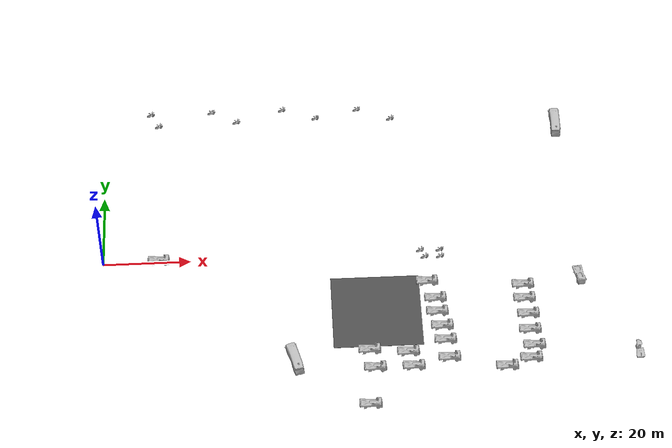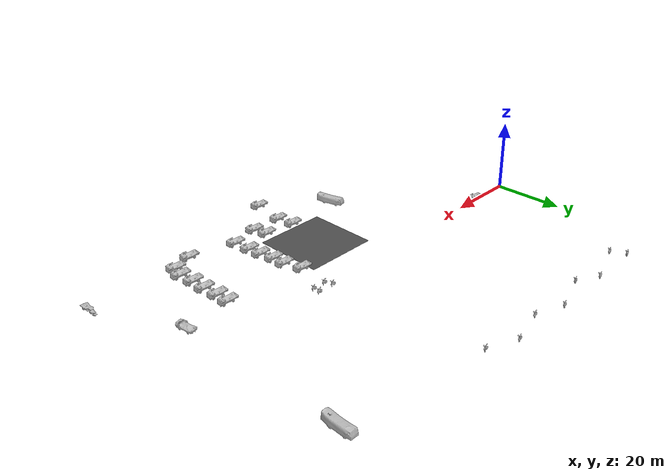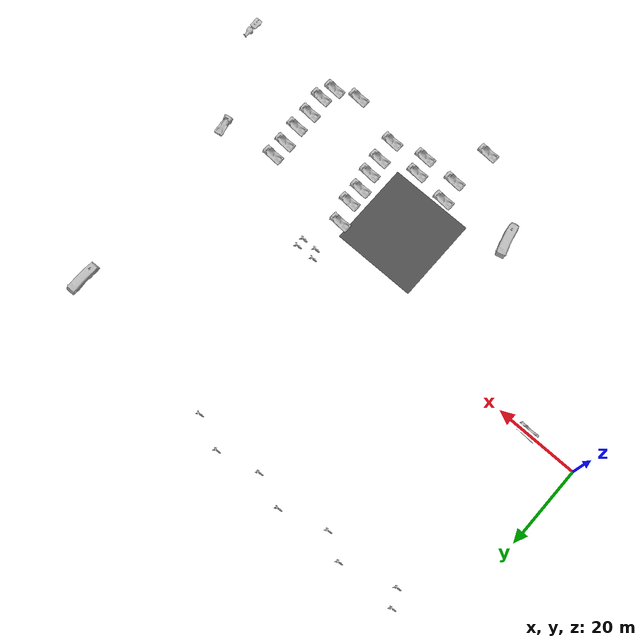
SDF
<sdf version="1.7">
 <world name="smoll_world">
  <model name="ground_plane">
   <static>1</static>
   <link name="link">
    <collision name="collision">
     <geometry><plane><normal>0 0 1</normal><size>100 100</size></plane></geometry>
     <surface><friction><ode><mu>100</mu><mu2>50</mu2></ode></friction></surface>
    </collision>
   </link>
  </model>
  <model name="asphalt_plane_74">
   <static>1</static>
   <pose>61.581 -16.664 0 0 -0 0</pose>
   <link name="link">
    <visual name="visual">
     <geometry><box><size>20 20 0.05</size></box></geometry>
     <material>
      <script>
       <uri>model://asphalt_plane/materials/scripts</uri>
       <uri>model://asphalt_plane/materials/textures</uri>
       <name>vrc/asphalt</name>
      </script>
     </material>
    </visual>
   </link>
  </model>
  <model name="kare-bus-2_clone_3">
   <model name="kare-bus">
    <static>1</static>
    <link name="link">
     <collision name="collision">
      <geometry><mesh><scale>8 8 8</scale><uri>model://kare-bus/meshes/kare-bus.obj</uri></mesh></geometry>
     </collision>
     <visual name="visual">
      <geometry><mesh><scale>8 8 8</scale><uri>model://kare-bus/meshes/kare-bus.obj</uri></mesh></geometry>
     </visual>
    </link>
    <pose>-3.3e-05 -0 -5e-06 1.57109 0.060055 1.57564</pose>
   </model>
   <static>0</static>
   <pose>107.138 37.8184 2.05341 0 -0 1.5594</pose>
  </model>
  <model name="bus56">
   <model name="kare-bus4">
    <model name="kare-bus-2">
     <model name="kare-bus">
      <static>1</static>
      <link name="link">
       <collision name="collision">
        <geometry>
         <mesh><scale>8 8 8</scale><uri>/home/amadeus/model_editor_models/kare-bus/meshes/kare-bus.obj</uri></mesh>
        </geometry>
       </collision>
       <visual name="visual">
        <geometry>
         <mesh><scale>8 8 8</scale><uri>/home/amadeus/model_editor_models/kare-bus/meshes/kare-bus.obj</uri></mesh>
        </geometry>
       </visual>
      </link>
      <pose>-3.3e-05 -0 -5e-06 1.57109 0.060055 1.57564</pose>
     </model>
     <static>0</static>
     <pose>4.1e-05 -4.9e-05 -0 0 -0 1.83082</pose>
    </model>
    <static>0</static>
    <pose>-4.2e-05 -5e-05 1.18266 0 -0 0</pose>
   </model>
   <static>0</static>
   <plugin name="model_move" filename="/home/amadeus/Downloads/dev_ws/src/articubot_one/worlds/build/libmodel_move.so"/>
   <pose>42.9302 -30.0519 5e-06 0 -0 5e-06</pose>
  </model>
  <model name="kare-lorry3">
   <model name="kare-lorry2">
    <model name="kare-emptylorry">
     <static>1</static>
     <link name="link">
      <collision name="collision">
       <geometry>
        <mesh>
         <scale>5 5 5</scale>
         <uri>/home/amadeus/model_editor_models/kare-emptylorry/meshes/kare-emptylorry.obj</uri>
        </mesh>
       </geometry>
      </collision>
      <visual name="visual">
       <geometry>
        <mesh>
         <scale>5 5 5</scale>
         <uri>/home/amadeus/model_editor_models/kare-emptylorry/meshes/kare-emptylorry.obj</uri>
        </mesh>
       </geometry>
      </visual>
     </link>
     <pose>-2.6e-05 -2.7e-05 -2e-06 1.55178 -0.050932 -1.58567</pose>
    </model>
    <static>0</static>
    <pose>2e-06 0 0.971266 0 -0 0</pose>
   </model>
   <static>1</static>
   <allow_auto_disable>0</allow_auto_disable>
   <plugin name="model_move" filename="/home/amadeus/Downloads/dev_ws/src/articubot_one/worlds/build/libmodel_move.so"/>
   <pose>12.7456 0.029316 0 0 0 0</pose>
  </model>
  <model name="kare-lorry3_clone_1">
   <model name="kare-lorry2">
    <model name="kare-emptylorry">
     <static>1</static>
     <link name="link">
      <collision name="collision">
       <geometry>
        <mesh>
         <scale>5 5 5</scale>
         <uri>/home/amadeus/model_editor_models/kare-emptylorry/meshes/kare-emptylorry.obj</uri>
        </mesh>
       </geometry>
      </collision>
      <visual name="visual">
       <geometry>
        <mesh>
         <scale>5 5 5</scale>
         <uri>/home/amadeus/model_editor_models/kare-emptylorry/meshes/kare-emptylorry.obj</uri>
        </mesh>
       </geometry>
      </visual>
     </link>
     <pose>-2.6e-05 -2.7e-05 -2e-06 1.55178 -0.050932 -1.58567</pose>
    </model>
    <static>0</static>
    <pose>2e-06 0 0.971266 0 -0 0</pose>
   </model>
   <static>1</static>
   <allow_auto_disable>0</allow_auto_disable>
   <plugin name="model_move" filename="/home/amadeus/Downloads/dev_ws/src/articubot_one/worlds/build/libmodel_move.so"/>
   <pose>59 -43 0 0 0 0</pose>
  </model>
  <model name="kare-lorry3_clone_2">
   <model name="kare-lorry2">
    <model name="kare-emptylorry">
     <static>1</static>
     <link name="link">
      <collision name="collision">
       <geometry>
        <mesh>
         <scale>5 5 5</scale>
         <uri>/home/amadeus/model_editor_models/kare-emptylorry/meshes/kare-emptylorry.obj</uri>
        </mesh>
       </geometry>
      </collision>
      <visual name="visual">
       <geometry>
        <mesh>
         <scale>5 5 5</scale>
         <uri>/home/amadeus/model_editor_models/kare-emptylorry/meshes/kare-emptylorry.obj</uri>
        </mesh>
       </geometry>
      </visual>
     </link>
     <pose>-2.6e-05 -2.7e-05 -2e-06 1.55178 -0.050932 -1.58567</pose>
    </model>
    <static>0</static>
    <pose>2e-06 0 0.971266 0 -0 0</pose>
   </model>
   <static>1</static>
   <allow_auto_disable>0</allow_auto_disable>
   <plugin name="model_move" filename="/home/amadeus/Downloads/dev_ws/src/articubot_one/worlds/build/libmodel_move.so"/>
   <pose>108 -9 -0 0 -0 -1.39707</pose>
  </model>
  <model name="kare-lorry3_clone_3">
   <model name="kare-lorry2">
    <model name="kare-emptylorry">
     <static>1</static>
     <link name="link">
      <collision name="collision">
       <geometry>
        <mesh>
         <scale>5 5 5</scale>
         <uri>/home/amadeus/model_editor_models/kare-emptylorry/meshes/kare-emptylorry.obj</uri>
        </mesh>
       </geometry>
      </collision>
      <visual name="visual">
       <geometry>
        <mesh>
         <scale>5 5 5</scale>
         <uri>/home/amadeus/model_editor_models/kare-emptylorry/meshes/kare-emptylorry.obj</uri>
        </mesh>
       </geometry>
      </visual>
     </link>
     <pose>-2.6e-05 -2.7e-05 -2e-06 1.55178 -0.050932 -1.58567</pose>
    </model>
    <static>0</static>
    <pose>2e-06 0 0.971266 0 -0 0</pose>
   </model>
   <static>1</static>
   <allow_auto_disable>0</allow_auto_disable>
   <plugin name="model_move" filename="/home/amadeus/Downloads/dev_ws/src/articubot_one/worlds/build/libmodel_move.so"/>
   <pose>73.4196 -9 0 0 0 0</pose>
  </model>
  <model name="kare-lorry3_clone_4">
   <model name="kare-lorry2">
    <model name="kare-emptylorry">
     <static>1</static>
     <link name="link">
      <collision name="collision">
       <geometry>
        <mesh>
         <scale>5 5 5</scale>
         <uri>/home/amadeus/model_editor_models/kare-emptylorry/meshes/kare-emptylorry.obj</uri>
        </mesh>
       </geometry>
      </collision>
      <visual name="visual">
       <geometry>
        <mesh>
         <scale>5 5 5</scale>
         <uri>/home/amadeus/model_editor_models/kare-emptylorry/meshes/kare-emptylorry.obj</uri>
        </mesh>
       </geometry>
      </visual>
     </link>
     <pose>-2.6e-05 -2.7e-05 -2e-06 1.55178 -0.050932 -1.58567</pose>
    </model>
    <static>0</static>
    <pose>2e-06 0 0.971266 0 -0 0</pose>
   </model>
   <static>1</static>
   <allow_auto_disable>0</allow_auto_disable>
   <plugin name="model_move" filename="/home/amadeus/Downloads/dev_ws/src/articubot_one/worlds/build/libmodel_move.so"/>
   <pose>75 -14 0 0 0 0</pose>
  </model>
  <model name="kare-lorry3_clone_3_clone">
   <model name="kare-lorry2">
    <model name="kare-emptylorry">
     <static>1</static>
     <link name="link">
      <collision name="collision">
       <geometry>
        <mesh>
         <scale>5 5 5</scale>
         <uri>/home/amadeus/model_editor_models/kare-emptylorry/meshes/kare-emptylorry.obj</uri>
        </mesh>
       </geometry>
      </collision>
      <visual name="visual">
       <geometry>
        <mesh>
         <scale>5 5 5</scale>
         <uri>/home/amadeus/model_editor_models/kare-emptylorry/meshes/kare-emptylorry.obj</uri>
        </mesh>
       </geometry>
      </visual>
     </link>
     <pose>-2.6e-05 -2.7e-05 -2e-06 1.55178 -0.050932 -1.58567</pose>
    </model>
    <static>0</static>
    <pose>2e-06 0 0.971266 0 -0 0</pose>
   </model>
   <static>1</static>
   <allow_auto_disable>0</allow_auto_disable>
   <plugin name="model_move" filename="/home/amadeus/Downloads/dev_ws/src/articubot_one/worlds/build/libmodel_move.so"/>
   <pose>75.1445 -17.8999 0 0 0 0</pose>
  </model>
  <model name="kare-lorry3_clone_3_clone_0">
   <model name="kare-lorry2">
    <model name="kare-emptylorry">
     <static>1</static>
     <link name="link">
      <collision name="collision">
       <geometry>
        <mesh>
         <scale>5 5 5</scale>
         <uri>/home/amadeus/model_editor_models/kare-emptylorry/meshes/kare-emptylorry.obj</uri>
        </mesh>
       </geometry>
      </collision>
      <visual name="visual">
       <geometry>
        <mesh>
         <scale>5 5 5</scale>
         <uri>/home/amadeus/model_editor_models/kare-emptylorry/meshes/kare-emptylorry.obj</uri>
        </mesh>
       </geometry>
      </visual>
     </link>
     <pose>-2.6e-05 -2.7e-05 -2e-06 1.55178 -0.050932 -1.58567</pose>
    </model>
    <static>0</static>
    <pose>2e-06 0 0.971266 0 -0 0</pose>
   </model>
   <static>1</static>
   <allow_auto_disable>0</allow_auto_disable>
   <plugin name="model_move" filename="/home/amadeus/Downloads/dev_ws/src/articubot_one/worlds/build/libmodel_move.so"/>
   <pose>76 -22 0 0 0 0</pose>
  </model>
  <model name="kare-lorry3_clone_3_clone_1">
   <model name="kare-lorry2">
    <model name="kare-emptylorry">
     <static>1</static>
     <link name="link">
      <collision name="collision">
       <geometry>
        <mesh>
         <scale>5 5 5</scale>
         <uri>/home/amadeus/model_editor_models/kare-emptylorry/meshes/kare-emptylorry.obj</uri>
        </mesh>
       </geometry>
      </collision>
      <visual name="visual">
       <geometry>
        <mesh>
         <scale>5 5 5</scale>
         <uri>/home/amadeus/model_editor_models/kare-emptylorry/meshes/kare-emptylorry.obj</uri>
        </mesh>
       </geometry>
      </visual>
     </link>
     <pose>-2.6e-05 -2.7e-05 -2e-06 1.55178 -0.050932 -1.58567</pose>
    </model>
    <static>0</static>
    <pose>2e-06 0 0.971266 0 -0 0</pose>
   </model>
   <static>1</static>
   <allow_auto_disable>0</allow_auto_disable>
   <plugin name="model_move" filename="/home/amadeus/Downloads/dev_ws/src/articubot_one/worlds/build/libmodel_move.so"/>
   <pose>76.4405 -26 0 0 0 0</pose>
  </model>
  <model name="kare-lorry3_clone_3_clone_2">
   <model name="kare-lorry2">
    <model name="kare-emptylorry">
     <static>1</static>
     <link name="link">
      <collision name="collision">
       <geometry>
        <mesh>
         <scale>5 5 5</scale>
         <uri>/home/amadeus/model_editor_models/kare-emptylorry/meshes/kare-emptylorry.obj</uri>
        </mesh>
       </geometry>
      </collision>
      <visual name="visual">
       <geometry>
        <mesh>
         <scale>5 5 5</scale>
         <uri>/home/amadeus/model_editor_models/kare-emptylorry/meshes/kare-emptylorry.obj</uri>
        </mesh>
       </geometry>
      </visual>
     </link>
     <pose>-2.6e-05 -2.7e-05 -2e-06 1.55178 -0.050932 -1.58567</pose>
    </model>
    <static>0</static>
    <pose>2e-06 0 0.971266 0 -0 0</pose>
   </model>
   <static>1</static>
   <allow_auto_disable>0</allow_auto_disable>
   <plugin name="model_move" filename="/home/amadeus/Downloads/dev_ws/src/articubot_one/worlds/build/libmodel_move.so"/>
   <pose>77 -31 0 0 0 0</pose>
  </model>
  <model name="kare-lorry3_clone_3_clone_3">
   <model name="kare-lorry2">
    <model name="kare-emptylorry">
     <static>1</static>
     <link name="link">
      <collision name="collision">
       <geometry>
        <mesh>
         <scale>5 5 5</scale>
         <uri>/home/amadeus/model_editor_models/kare-emptylorry/meshes/kare-emptylorry.obj</uri>
        </mesh>
       </geometry>
      </collision>
      <visual name="visual">
       <geometry>
        <mesh>
         <scale>5 5 5</scale>
         <uri>/home/amadeus/model_editor_models/kare-emptylorry/meshes/kare-emptylorry.obj</uri>
        </mesh>
       </geometry>
      </visual>
     </link>
     <pose>-2.6e-05 -2.7e-05 -2e-06 1.55178 -0.050932 -1.58567</pose>
    </model>
    <static>0</static>
    <pose>2e-06 0 0.971266 0 -0 0</pose>
   </model>
   <static>1</static>
   <allow_auto_disable>0</allow_auto_disable>
   <plugin name="model_move" filename="/home/amadeus/Downloads/dev_ws/src/articubot_one/worlds/build/libmodel_move.so"/>
   <pose>68 -29 0 0 0 0</pose>
  </model>
  <model name="kare-lorry3_clone_3_clone_4">
   <model name="kare-lorry2">
    <model name="kare-emptylorry">
     <static>1</static>
     <link name="link">
      <collision name="collision">
       <geometry>
        <mesh>
         <scale>5 5 5</scale>
         <uri>/home/amadeus/model_editor_models/kare-emptylorry/meshes/kare-emptylorry.obj</uri>
        </mesh>
       </geometry>
      </collision>
      <visual name="visual">
       <geometry>
        <mesh>
         <scale>5 5 5</scale>
         <uri>/home/amadeus/model_editor_models/kare-emptylorry/meshes/kare-emptylorry.obj</uri>
        </mesh>
       </geometry>
      </visual>
     </link>
     <pose>-2.6e-05 -2.7e-05 -2e-06 1.55178 -0.050932 -1.58567</pose>
    </model>
    <static>0</static>
    <pose>2e-06 0 0.971266 0 -0 0</pose>
   </model>
   <static>1</static>
   <allow_auto_disable>0</allow_auto_disable>
   <plugin name="model_move" filename="/home/amadeus/Downloads/dev_ws/src/articubot_one/worlds/build/libmodel_move.so"/>
   <pose>69 -33 0 0 0 0</pose>
  </model>
  <model name="kare-lorry3_clone_3_clone_5">
   <model name="kare-lorry2">
    <model name="kare-emptylorry">
     <static>1</static>
     <link name="link">
      <collision name="collision">
       <geometry>
        <mesh>
         <scale>5 5 5</scale>
         <uri>/home/amadeus/model_editor_models/kare-emptylorry/meshes/kare-emptylorry.obj</uri>
        </mesh>
       </geometry>
      </collision>
      <visual name="visual">
       <geometry>
        <mesh>
         <scale>5 5 5</scale>
         <uri>/home/amadeus/model_editor_models/kare-emptylorry/meshes/kare-emptylorry.obj</uri>
        </mesh>
       </geometry>
      </visual>
     </link>
     <pose>-2.6e-05 -2.7e-05 -2e-06 1.55178 -0.050932 -1.58567</pose>
    </model>
    <static>0</static>
    <pose>2e-06 0 0.971266 0 -0 0</pose>
   </model>
   <static>1</static>
   <allow_auto_disable>0</allow_auto_disable>
   <plugin name="model_move" filename="/home/amadeus/Downloads/dev_ws/src/articubot_one/worlds/build/libmodel_move.so"/>
   <pose>59.4904 -28 0 0 0 0</pose>
  </model>
  <model name="kare-lorry3_clone_3_clone_6">
   <model name="kare-lorry2">
    <model name="kare-emptylorry">
     <static>1</static>
     <link name="link">
      <collision name="collision">
       <geometry>
        <mesh>
         <scale>5 5 5</scale>
         <uri>/home/amadeus/model_editor_models/kare-emptylorry/meshes/kare-emptylorry.obj</uri>
        </mesh>
       </geometry>
      </collision>
      <visual name="visual">
       <geometry>
        <mesh>
         <scale>5 5 5</scale>
         <uri>/home/amadeus/model_editor_models/kare-emptylorry/meshes/kare-emptylorry.obj</uri>
        </mesh>
       </geometry>
      </visual>
     </link>
     <pose>-2.6e-05 -2.7e-05 -2e-06 1.55178 -0.050932 -1.58567</pose>
    </model>
    <static>0</static>
    <pose>2e-06 0 0.971266 0 -0 0</pose>
   </model>
   <static>1</static>
   <allow_auto_disable>0</allow_auto_disable>
   <plugin name="model_move" filename="/home/amadeus/Downloads/dev_ws/src/articubot_one/worlds/build/libmodel_move.so"/>
   <pose>60.4817 -33 0 0 0 0</pose>
  </model>
  <model name="kare-lorry3_clone_3_clone_7">
   <model name="kare-lorry2">
    <model name="kare-emptylorry">
     <static>1</static>
     <link name="link">
      <collision name="collision">
       <geometry>
        <mesh>
         <scale>5 5 5</scale>
         <uri>/home/amadeus/model_editor_models/kare-emptylorry/meshes/kare-emptylorry.obj</uri>
        </mesh>
       </geometry>
      </collision>
      <visual name="visual">
       <geometry>
        <mesh>
         <scale>5 5 5</scale>
         <uri>/home/amadeus/model_editor_models/kare-emptylorry/meshes/kare-emptylorry.obj</uri>
        </mesh>
       </geometry>
      </visual>
     </link>
     <pose>-2.6e-05 -2.7e-05 -2e-06 1.55178 -0.050932 -1.58567</pose>
    </model>
    <static>0</static>
    <pose>2e-06 0 0.971266 0 -0 0</pose>
   </model>
   <static>1</static>
   <allow_auto_disable>0</allow_auto_disable>
   <plugin name="model_move" filename="/home/amadeus/Downloads/dev_ws/src/articubot_one/worlds/build/libmodel_move.so"/>
   <pose>89.5026 -34 0 0 0 0</pose>
  </model>
  <model name="kare-lorry3_clone_3_clone_8">
   <model name="kare-lorry2">
    <model name="kare-emptylorry">
     <static>1</static>
     <link name="link">
      <collision name="collision">
       <geometry>
        <mesh>
         <scale>5 5 5</scale>
         <uri>/home/amadeus/model_editor_models/kare-emptylorry/meshes/kare-emptylorry.obj</uri>
        </mesh>
       </geometry>
      </collision>
      <visual name="visual">
       <geometry>
        <mesh>
         <scale>5 5 5</scale>
         <uri>/home/amadeus/model_editor_models/kare-emptylorry/meshes/kare-emptylorry.obj</uri>
        </mesh>
       </geometry>
      </visual>
     </link>
     <pose>-2.6e-05 -2.7e-05 -2e-06 1.55178 -0.050932 -1.58567</pose>
    </model>
    <static>0</static>
    <pose>2e-06 0 0.971266 0 -0 0</pose>
   </model>
   <static>1</static>
   <allow_auto_disable>0</allow_auto_disable>
   <plugin name="model_move" filename="/home/amadeus/Downloads/dev_ws/src/articubot_one/worlds/build/libmodel_move.so"/>
   <pose>95 -32 0 0 0 0</pose>
  </model>
  <model name="kare-lorry3_clone_3_clone_9">
   <model name="kare-lorry2">
    <model name="kare-emptylorry">
     <static>1</static>
     <link name="link">
      <collision name="collision">
       <geometry>
        <mesh>
         <scale>5 5 5</scale>
         <uri>/home/amadeus/model_editor_models/kare-emptylorry/meshes/kare-emptylorry.obj</uri>
        </mesh>
       </geometry>
      </collision>
      <visual name="visual">
       <geometry>
        <mesh>
         <scale>5 5 5</scale>
         <uri>/home/amadeus/model_editor_models/kare-emptylorry/meshes/kare-emptylorry.obj</uri>
        </mesh>
       </geometry>
      </visual>
     </link>
     <pose>-2.6e-05 -2.7e-05 -2e-06 1.55178 -0.050932 -1.58567</pose>
    </model>
    <static>0</static>
    <pose>2e-06 0 0.971266 0 -0 0</pose>
   </model>
   <static>1</static>
   <allow_auto_disable>0</allow_auto_disable>
   <plugin name="model_move" filename="/home/amadeus/Downloads/dev_ws/src/articubot_one/worlds/build/libmodel_move.so"/>
   <pose>96 -28.4952 0 0 0 0</pose>
  </model>
  <model name="kare-lorry3_clone_3_clone_10">
   <model name="kare-lorry2">
    <model name="kare-emptylorry">
     <static>1</static>
     <link name="link">
      <collision name="collision">
       <geometry>
        <mesh>
         <scale>5 5 5</scale>
         <uri>/home/amadeus/model_editor_models/kare-emptylorry/meshes/kare-emptylorry.obj</uri>
        </mesh>
       </geometry>
      </collision>
      <visual name="visual">
       <geometry>
        <mesh>
         <scale>5 5 5</scale>
         <uri>/home/amadeus/model_editor_models/kare-emptylorry/meshes/kare-emptylorry.obj</uri>
        </mesh>
       </geometry>
      </visual>
     </link>
     <pose>-2.6e-05 -2.7e-05 -2e-06 1.55178 -0.050932 -1.58567</pose>
    </model>
    <static>0</static>
    <pose>2e-06 0 0.971266 0 -0 0</pose>
   </model>
   <static>1</static>
   <allow_auto_disable>0</allow_auto_disable>
   <plugin name="model_move" filename="/home/amadeus/Downloads/dev_ws/src/articubot_one/worlds/build/libmodel_move.so"/>
   <pose>95.4546 -24 0 0 0 0</pose>
  </model>
  <model name="kare-lorry3_clone_3_clone_11">
   <model name="kare-lorry2">
    <model name="kare-emptylorry">
     <static>1</static>
     <link name="link">
      <collision name="collision">
       <geometry>
        <mesh>
         <scale>5 5 5</scale>
         <uri>/home/amadeus/model_editor_models/kare-emptylorry/meshes/kare-emptylorry.obj</uri>
        </mesh>
       </geometry>
      </collision>
      <visual name="visual">
       <geometry>
        <mesh>
         <scale>5 5 5</scale>
         <uri>/home/amadeus/model_editor_models/kare-emptylorry/meshes/kare-emptylorry.obj</uri>
        </mesh>
       </geometry>
      </visual>
     </link>
     <pose>-2.6e-05 -2.7e-05 -2e-06 1.55178 -0.050932 -1.58567</pose>
    </model>
    <static>0</static>
    <pose>2e-06 0 0.971266 0 -0 0</pose>
   </model>
   <static>1</static>
   <allow_auto_disable>0</allow_auto_disable>
   <plugin name="model_move" filename="/home/amadeus/Downloads/dev_ws/src/articubot_one/worlds/build/libmodel_move.so"/>
   <pose>95.4777 -19.5399 0 0 0 0</pose>
  </model>
  <model name="kare-lorry3_clone_3_clone_12">
   <model name="kare-lorry2">
    <model name="kare-emptylorry">
     <static>1</static>
     <link name="link">
      <collision name="collision">
       <geometry>
        <mesh>
         <scale>5 5 5</scale>
         <uri>/home/amadeus/model_editor_models/kare-emptylorry/meshes/kare-emptylorry.obj</uri>
        </mesh>
       </geometry>
      </collision>
      <visual name="visual">
       <geometry>
        <mesh>
         <scale>5 5 5</scale>
         <uri>/home/amadeus/model_editor_models/kare-emptylorry/meshes/kare-emptylorry.obj</uri>
        </mesh>
       </geometry>
      </visual>
     </link>
     <pose>-2.6e-05 -2.7e-05 -2e-06 1.55178 -0.050932 -1.58567</pose>
    </model>
    <static>0</static>
    <pose>2e-06 0 0.971266 0 -0 0</pose>
   </model>
   <static>1</static>
   <allow_auto_disable>0</allow_auto_disable>
   <plugin name="model_move" filename="/home/amadeus/Downloads/dev_ws/src/articubot_one/worlds/build/libmodel_move.so"/>
   <pose>95 -15 0 0 0 0</pose>
  </model>
  <model name="kare-lorry3_clone_3_clone_13">
   <model name="kare-lorry2">
    <model name="kare-emptylorry">
     <static>1</static>
     <link name="link">
      <collision name="collision">
       <geometry>
        <mesh>
         <scale>5 5 5</scale>
         <uri>/home/amadeus/model_editor_models/kare-emptylorry/meshes/kare-emptylorry.obj</uri>
        </mesh>
       </geometry>
      </collision>
      <visual name="visual">
       <geometry>
        <mesh>
         <scale>5 5 5</scale>
         <uri>/home/amadeus/model_editor_models/kare-emptylorry/meshes/kare-emptylorry.obj</uri>
        </mesh>
       </geometry>
      </visual>
     </link>
     <pose>-2.6e-05 -2.7e-05 -2e-06 1.55178 -0.050932 -1.58567</pose>
    </model>
    <static>0</static>
    <pose>2e-06 0 0.971266 0 -0 0</pose>
   </model>
   <static>1</static>
   <allow_auto_disable>0</allow_auto_disable>
   <plugin name="model_move" filename="/home/amadeus/Downloads/dev_ws/src/articubot_one/worlds/build/libmodel_move.so"/>
   <pose>95 -11 0 0 0 0</pose>
  </model>
  <model name="kare-truck_clone_0">
   <static>1</static>
   <link name="link">
    <collision name="collision">
     <geometry><mesh><scale>5 5 5</scale><uri>model://kare-truck/meshes/kare-truck.obj</uri></mesh></geometry>
    </collision>
    <visual name="visual">
     <geometry><mesh><scale>5 5 5</scale><uri>model://kare-truck/meshes/kare-truck.obj</uri></mesh></geometry>
    </visual>
   </link>
   <pose>119 -31 0.931027 1.55509 -0 0</pose>
  </model>
  <model name="kare-cycle2_clone">
   <model name="kare-cycle2">
    <model name="kare-cycle-2">
     <link name="link">
      <inertial>
       <mass>1</mass>
       <inertia><ixx>1</ixx><ixy>0</ixy><ixz>0</ixz><iyy>1</iyy><iyz>0</iyz><izz>1</izz></inertia>
      </inertial>
      <visual name="visual">
       <geometry><mesh><scale>2 2 2</scale><uri>model://kare-cycle/meshes/kare-cycle.obj</uri></mesh></geometry>
       <material><shader type="pixel"/></material>
      </visual>
      <collision name="collision">
       <geometry>
        <mesh><uri>/home/amadeus/model_editor_models/kare-cycle/meshes/kare-cycle.obj</uri><scale>2 2 2</scale></mesh>
       </geometry>
       <surface>
        <friction>
         <ode><mu>1</mu><mu2>1</mu2><fdir1>0 0 0</fdir1><slip1>0</slip1><slip2>0</slip2></ode>
         <torsional>
          <coefficient>1</coefficient>
          <patch_radius>0</patch_radius>
          <surface_radius>0</surface_radius>
          <use_patch_radius>1</use_patch_radius>
          <ode><slip>0</slip></ode>
         </torsional>
        </friction>
        <bounce><restitution_coefficient>0</restitution_coefficient><threshold>1e+06</threshold></bounce>
        <contact>
         <collide_without_contact>0</collide_without_contact>
         <collide_without_contact_bitmask>1</collide_without_contact_bitmask>
         <collide_bitmask>1</collide_bitmask>
         <ode>
          <soft_cfm>0</soft_cfm>
          <soft_erp>0.2</soft_erp>
          <kp>1e+13</kp>
          <kd>1</kd>
          <max_vel>0.01</max_vel>
          <min_depth>0</min_depth>
         </ode>
         <bullet>
          <split_impulse>1</split_impulse>
          <split_impulse_penetration_threshold>-0.01</split_impulse_penetration_threshold>
          <soft_cfm>0</soft_cfm>
          <soft_erp>0.2</soft_erp>
          <kp>1e+13</kp>
          <kd>1</kd>
         </bullet>
        </contact>
       </surface>
      </collision>
     </link>
     <static>1</static>
     <pose>4.5e-05 3e-06 6e-06 1.56443 -0.051805 1.69313</pose>
    </model>
    <static>0</static>
    <pose>9e-06 4e-06 -1e-06 0 -0 0</pose>
   </model>
   <static>0</static>
   <pose>10.4568 46.8927 0 0 0 0</pose>
  </model>
  <model name="kare-cycle2_clone_0">
   <model name="kare-cycle2">
    <model name="kare-cycle-2">
     <link name="link">
      <inertial>
       <mass>1</mass>
       <inertia><ixx>1</ixx><ixy>0</ixy><ixz>0</ixz><iyy>1</iyy><iyz>0</iyz><izz>1</izz></inertia>
      </inertial>
      <visual name="visual">
       <geometry><mesh><scale>2 2 2</scale><uri>model://kare-cycle/meshes/kare-cycle.obj</uri></mesh></geometry>
       <material><shader type="pixel"/></material>
      </visual>
      <collision name="collision">
       <geometry>
        <mesh><uri>/home/amadeus/model_editor_models/kare-cycle/meshes/kare-cycle.obj</uri><scale>2 2 2</scale></mesh>
       </geometry>
       <surface>
        <friction>
         <ode><mu>1</mu><mu2>1</mu2><fdir1>0 0 0</fdir1><slip1>0</slip1><slip2>0</slip2></ode>
         <torsional>
          <coefficient>1</coefficient>
          <patch_radius>0</patch_radius>
          <surface_radius>0</surface_radius>
          <use_patch_radius>1</use_patch_radius>
          <ode><slip>0</slip></ode>
         </torsional>
        </friction>
        <bounce><restitution_coefficient>0</restitution_coefficient><threshold>1e+06</threshold></bounce>
        <contact>
         <collide_without_contact>0</collide_without_contact>
         <collide_without_contact_bitmask>1</collide_without_contact_bitmask>
         <collide_bitmask>1</collide_bitmask>
         <ode>
          <soft_cfm>0</soft_cfm>
          <soft_erp>0.2</soft_erp>
          <kp>1e+13</kp>
          <kd>1</kd>
          <max_vel>0.01</max_vel>
          <min_depth>0</min_depth>
         </ode>
         <bullet>
          <split_impulse>1</split_impulse>
          <split_impulse_penetration_threshold>-0.01</split_impulse_penetration_threshold>
          <soft_cfm>0</soft_cfm>
          <soft_erp>0.2</soft_erp>
          <kp>1e+13</kp>
          <kd>1</kd>
         </bullet>
        </contact>
       </surface>
      </collision>
     </link>
     <static>1</static>
     <pose>4.5e-05 3e-06 6e-06 1.56443 -0.051805 1.69313</pose>
    </model>
    <static>0</static>
    <pose>9e-06 4e-06 -1e-06 0 -0 0</pose>
   </model>
   <static>0</static>
   <pose>12.4072 43 0 0 0 0</pose>
  </model>
  <model name="kare-cycle2_clone_1">
   <model name="kare-cycle2">
    <model name="kare-cycle-2">
     <link name="link">
      <inertial>
       <mass>1</mass>
       <inertia><ixx>1</ixx><ixy>0</ixy><ixz>0</ixz><iyy>1</iyy><iyz>0</iyz><izz>1</izz></inertia>
      </inertial>
      <visual name="visual">
       <geometry><mesh><scale>2 2 2</scale><uri>model://kare-cycle/meshes/kare-cycle.obj</uri></mesh></geometry>
       <material><shader type="pixel"/></material>
      </visual>
      <collision name="collision">
       <geometry>
        <mesh><uri>/home/amadeus/model_editor_models/kare-cycle/meshes/kare-cycle.obj</uri><scale>2 2 2</scale></mesh>
       </geometry>
       <surface>
        <friction>
         <ode><mu>1</mu><mu2>1</mu2><fdir1>0 0 0</fdir1><slip1>0</slip1><slip2>0</slip2></ode>
         <torsional>
          <coefficient>1</coefficient>
          <patch_radius>0</patch_radius>
          <surface_radius>0</surface_radius>
          <use_patch_radius>1</use_patch_radius>
          <ode><slip>0</slip></ode>
         </torsional>
        </friction>
        <bounce><restitution_coefficient>0</restitution_coefficient><threshold>1e+06</threshold></bounce>
        <contact>
         <collide_without_contact>0</collide_without_contact>
         <collide_without_contact_bitmask>1</collide_without_contact_bitmask>
         <collide_bitmask>1</collide_bitmask>
         <ode>
          <soft_cfm>0</soft_cfm>
          <soft_erp>0.2</soft_erp>
          <kp>1e+13</kp>
          <kd>1</kd>
          <max_vel>0.01</max_vel>
          <min_depth>0</min_depth>
         </ode>
         <bullet>
          <split_impulse>1</split_impulse>
          <split_impulse_penetration_threshold>-0.01</split_impulse_penetration_threshold>
          <soft_cfm>0</soft_cfm>
          <soft_erp>0.2</soft_erp>
          <kp>1e+13</kp>
          <kd>1</kd>
         </bullet>
        </contact>
       </surface>
      </collision>
     </link>
     <static>1</static>
     <pose>4.5e-05 3e-06 6e-06 1.56443 -0.051805 1.69313</pose>
    </model>
    <static>0</static>
    <pose>9e-06 4e-06 -1e-06 0 -0 0</pose>
   </model>
   <static>0</static>
   <pose>25 47 0 0 0 0</pose>
  </model>
  <model name="kare-cycle2_clone_2">
   <model name="kare-cycle2">
    <model name="kare-cycle-2">
     <link name="link">
      <inertial>
       <mass>1</mass>
       <inertia><ixx>1</ixx><ixy>0</ixy><ixz>0</ixz><iyy>1</iyy><iyz>0</iyz><izz>1</izz></inertia>
      </inertial>
      <visual name="visual">
       <geometry><mesh><scale>2 2 2</scale><uri>model://kare-cycle/meshes/kare-cycle.obj</uri></mesh></geometry>
       <material><shader type="pixel"/></material>
      </visual>
      <collision name="collision">
       <geometry>
        <mesh><uri>/home/amadeus/model_editor_models/kare-cycle/meshes/kare-cycle.obj</uri><scale>2 2 2</scale></mesh>
       </geometry>
       <surface>
        <friction>
         <ode><mu>1</mu><mu2>1</mu2><fdir1>0 0 0</fdir1><slip1>0</slip1><slip2>0</slip2></ode>
         <torsional>
          <coefficient>1</coefficient>
          <patch_radius>0</patch_radius>
          <surface_radius>0</surface_radius>
          <use_patch_radius>1</use_patch_radius>
          <ode><slip>0</slip></ode>
         </torsional>
        </friction>
        <bounce><restitution_coefficient>0</restitution_coefficient><threshold>1e+06</threshold></bounce>
        <contact>
         <collide_without_contact>0</collide_without_contact>
         <collide_without_contact_bitmask>1</collide_without_contact_bitmask>
         <collide_bitmask>1</collide_bitmask>
         <ode>
          <soft_cfm>0</soft_cfm>
          <soft_erp>0.2</soft_erp>
          <kp>1e+13</kp>
          <kd>1</kd>
          <max_vel>0.01</max_vel>
          <min_depth>0</min_depth>
         </ode>
         <bullet>
          <split_impulse>1</split_impulse>
          <split_impulse_penetration_threshold>-0.01</split_impulse_penetration_threshold>
          <soft_cfm>0</soft_cfm>
          <soft_erp>0.2</soft_erp>
          <kp>1e+13</kp>
          <kd>1</kd>
         </bullet>
        </contact>
       </surface>
      </collision>
     </link>
     <static>1</static>
     <pose>4.5e-05 3e-06 6e-06 1.56443 -0.051805 1.69313</pose>
    </model>
    <static>0</static>
    <pose>9e-06 4e-06 -1e-06 0 -0 0</pose>
   </model>
   <static>0</static>
   <pose>31 43.5556 0 0 0 0</pose>
  </model>
  <model name="kare-cycle2_clone_3">
   <model name="kare-cycle2">
    <model name="kare-cycle-2">
     <link name="link">
      <inertial>
       <mass>1</mass>
       <inertia><ixx>1</ixx><ixy>0</ixy><ixz>0</ixz><iyy>1</iyy><iyz>0</iyz><izz>1</izz></inertia>
      </inertial>
      <visual name="visual">
       <geometry><mesh><scale>2 2 2</scale><uri>model://kare-cycle/meshes/kare-cycle.obj</uri></mesh></geometry>
       <material><shader type="pixel"/></material>
      </visual>
      <collision name="collision">
       <geometry>
        <mesh><uri>/home/amadeus/model_editor_models/kare-cycle/meshes/kare-cycle.obj</uri><scale>2 2 2</scale></mesh>
       </geometry>
       <surface>
        <friction>
         <ode><mu>1</mu><mu2>1</mu2><fdir1>0 0 0</fdir1><slip1>0</slip1><slip2>0</slip2></ode>
         <torsional>
          <coefficient>1</coefficient>
          <patch_radius>0</patch_radius>
          <surface_radius>0</surface_radius>
          <use_patch_radius>1</use_patch_radius>
          <ode><slip>0</slip></ode>
         </torsional>
        </friction>
        <bounce><restitution_coefficient>0</restitution_coefficient><threshold>1e+06</threshold></bounce>
        <contact>
         <collide_without_contact>0</collide_without_contact>
         <collide_without_contact_bitmask>1</collide_without_contact_bitmask>
         <collide_bitmask>1</collide_bitmask>
         <ode>
          <soft_cfm>0</soft_cfm>
          <soft_erp>0.2</soft_erp>
          <kp>1e+13</kp>
          <kd>1</kd>
          <max_vel>0.01</max_vel>
          <min_depth>0</min_depth>
         </ode>
         <bullet>
          <split_impulse>1</split_impulse>
          <split_impulse_penetration_threshold>-0.01</split_impulse_penetration_threshold>
          <soft_cfm>0</soft_cfm>
          <soft_erp>0.2</soft_erp>
          <kp>1e+13</kp>
          <kd>1</kd>
         </bullet>
        </contact>
       </surface>
      </collision>
     </link>
     <static>1</static>
     <pose>4.5e-05 3e-06 6e-06 1.56443 -0.051805 1.69313</pose>
    </model>
    <static>0</static>
    <pose>9e-06 4e-06 -1e-06 0 -0 0</pose>
   </model>
   <static>0</static>
   <pose>42 47 0 0 0 0</pose>
  </model>
  <model name="kare-cycle2_clone_4">
   <model name="kare-cycle2">
    <model name="kare-cycle-2">
     <link name="link">
      <inertial>
       <mass>1</mass>
       <inertia><ixx>1</ixx><ixy>0</ixy><ixz>0</ixz><iyy>1</iyy><iyz>0</iyz><izz>1</izz></inertia>
      </inertial>
      <visual name="visual">
       <geometry><mesh><scale>2 2 2</scale><uri>model://kare-cycle/meshes/kare-cycle.obj</uri></mesh></geometry>
       <material><shader type="pixel"/></material>
      </visual>
      <collision name="collision">
       <geometry>
        <mesh><uri>/home/amadeus/model_editor_models/kare-cycle/meshes/kare-cycle.obj</uri><scale>2 2 2</scale></mesh>
       </geometry>
       <surface>
        <friction>
         <ode><mu>1</mu><mu2>1</mu2><fdir1>0 0 0</fdir1><slip1>0</slip1><slip2>0</slip2></ode>
         <torsional>
          <coefficient>1</coefficient>
          <patch_radius>0</patch_radius>
          <surface_radius>0</surface_radius>
          <use_patch_radius>1</use_patch_radius>
          <ode><slip>0</slip></ode>
         </torsional>
        </friction>
        <bounce><restitution_coefficient>0</restitution_coefficient><threshold>1e+06</threshold></bounce>
        <contact>
         <collide_without_contact>0</collide_without_contact>
         <collide_without_contact_bitmask>1</collide_without_contact_bitmask>
         <collide_bitmask>1</collide_bitmask>
         <ode>
          <soft_cfm>0</soft_cfm>
          <soft_erp>0.2</soft_erp>
          <kp>1e+13</kp>
          <kd>1</kd>
          <max_vel>0.01</max_vel>
          <min_depth>0</min_depth>
         </ode>
         <bullet>
          <split_impulse>1</split_impulse>
          <split_impulse_penetration_threshold>-0.01</split_impulse_penetration_threshold>
          <soft_cfm>0</soft_cfm>
          <soft_erp>0.2</soft_erp>
          <kp>1e+13</kp>
          <kd>1</kd>
         </bullet>
        </contact>
       </surface>
      </collision>
     </link>
     <static>1</static>
     <pose>4.5e-05 3e-06 6e-06 1.56443 -0.051805 1.69313</pose>
    </model>
    <static>0</static>
    <pose>9e-06 4e-06 -1e-06 0 -0 0</pose>
   </model>
   <static>0</static>
   <pose>50 44 0 0 0 0</pose>
  </model>
  <model name="kare-cycle2_clone_5">
   <model name="kare-cycle2">
    <model name="kare-cycle-2">
     <link name="link">
      <inertial>
       <mass>1</mass>
       <inertia><ixx>1</ixx><ixy>0</ixy><ixz>0</ixz><iyy>1</iyy><iyz>0</iyz><izz>1</izz></inertia>
      </inertial>
      <visual name="visual">
       <geometry><mesh><scale>2 2 2</scale><uri>model://kare-cycle/meshes/kare-cycle.obj</uri></mesh></geometry>
       <material><shader type="pixel"/></material>
      </visual>
      <collision name="collision">
       <geometry>
        <mesh><uri>/home/amadeus/model_editor_models/kare-cycle/meshes/kare-cycle.obj</uri><scale>2 2 2</scale></mesh>
       </geometry>
       <surface>
        <friction>
         <ode><mu>1</mu><mu2>1</mu2><fdir1>0 0 0</fdir1><slip1>0</slip1><slip2>0</slip2></ode>
         <torsional>
          <coefficient>1</coefficient>
          <patch_radius>0</patch_radius>
          <surface_radius>0</surface_radius>
          <use_patch_radius>1</use_patch_radius>
          <ode><slip>0</slip></ode>
         </torsional>
        </friction>
        <bounce><restitution_coefficient>0</restitution_coefficient><threshold>1e+06</threshold></bounce>
        <contact>
         <collide_without_contact>0</collide_without_contact>
         <collide_without_contact_bitmask>1</collide_without_contact_bitmask>
         <collide_bitmask>1</collide_bitmask>
         <ode>
          <soft_cfm>0</soft_cfm>
          <soft_erp>0.2</soft_erp>
          <kp>1e+13</kp>
          <kd>1</kd>
          <max_vel>0.01</max_vel>
          <min_depth>0</min_depth>
         </ode>
         <bullet>
          <split_impulse>1</split_impulse>
          <split_impulse_penetration_threshold>-0.01</split_impulse_penetration_threshold>
          <soft_cfm>0</soft_cfm>
          <soft_erp>0.2</soft_erp>
          <kp>1e+13</kp>
          <kd>1</kd>
         </bullet>
        </contact>
       </surface>
      </collision>
     </link>
     <static>1</static>
     <pose>4.5e-05 3e-06 6e-06 1.56443 -0.051805 1.69313</pose>
    </model>
    <static>0</static>
    <pose>9e-06 4e-06 -1e-06 0 -0 0</pose>
   </model>
   <static>0</static>
   <pose>60 46.4117 0 0 0 0</pose>
  </model>
  <model name="kare-cycle2_clone_6">
   <model name="kare-cycle2">
    <model name="kare-cycle-2">
     <link name="link">
      <inertial>
       <mass>1</mass>
       <inertia><ixx>1</ixx><ixy>0</ixy><ixz>0</ixz><iyy>1</iyy><iyz>0</iyz><izz>1</izz></inertia>
      </inertial>
      <visual name="visual">
       <geometry><mesh><scale>2 2 2</scale><uri>model://kare-cycle/meshes/kare-cycle.obj</uri></mesh></geometry>
       <material><shader type="pixel"/></material>
      </visual>
      <collision name="collision">
       <geometry>
        <mesh><uri>/home/amadeus/model_editor_models/kare-cycle/meshes/kare-cycle.obj</uri><scale>2 2 2</scale></mesh>
       </geometry>
       <surface>
        <friction>
         <ode><mu>1</mu><mu2>1</mu2><fdir1>0 0 0</fdir1><slip1>0</slip1><slip2>0</slip2></ode>
         <torsional>
          <coefficient>1</coefficient>
          <patch_radius>0</patch_radius>
          <surface_radius>0</surface_radius>
          <use_patch_radius>1</use_patch_radius>
          <ode><slip>0</slip></ode>
         </torsional>
        </friction>
        <bounce><restitution_coefficient>0</restitution_coefficient><threshold>1e+06</threshold></bounce>
        <contact>
         <collide_without_contact>0</collide_without_contact>
         <collide_without_contact_bitmask>1</collide_without_contact_bitmask>
         <collide_bitmask>1</collide_bitmask>
         <ode>
          <soft_cfm>0</soft_cfm>
          <soft_erp>0.2</soft_erp>
          <kp>1e+13</kp>
          <kd>1</kd>
          <max_vel>0.01</max_vel>
          <min_depth>0</min_depth>
         </ode>
         <bullet>
          <split_impulse>1</split_impulse>
          <split_impulse_penetration_threshold>-0.01</split_impulse_penetration_threshold>
          <soft_cfm>0</soft_cfm>
          <soft_erp>0.2</soft_erp>
          <kp>1e+13</kp>
          <kd>1</kd>
         </bullet>
        </contact>
       </surface>
      </collision>
     </link>
     <static>1</static>
     <pose>4.5e-05 3e-06 6e-06 1.56443 -0.051805 1.69313</pose>
    </model>
    <static>0</static>
    <pose>9e-06 4e-06 -1e-06 0 -0 0</pose>
   </model>
   <static>0</static>
   <pose>68 43 0 0 0 0</pose>
  </model>
  <model name="kare-cycle2_clone_7">
   <model name="kare-cycle2">
    <model name="kare-cycle-2">
     <link name="link">
      <inertial>
       <mass>1</mass>
       <inertia><ixx>1</ixx><ixy>0</ixy><ixz>0</ixz><iyy>1</iyy><iyz>0</iyz><izz>1</izz></inertia>
      </inertial>
      <visual name="visual">
       <geometry><mesh><scale>2 2 2</scale><uri>model://kare-cycle/meshes/kare-cycle.obj</uri></mesh></geometry>
       <material><shader type="pixel"/></material>
      </visual>
      <collision name="collision">
       <geometry>
        <mesh><uri>/home/amadeus/model_editor_models/kare-cycle/meshes/kare-cycle.obj</uri><scale>2 2 2</scale></mesh>
       </geometry>
       <surface>
        <friction>
         <ode><mu>1</mu><mu2>1</mu2><fdir1>0 0 0</fdir1><slip1>0</slip1><slip2>0</slip2></ode>
         <torsional>
          <coefficient>1</coefficient>
          <patch_radius>0</patch_radius>
          <surface_radius>0</surface_radius>
          <use_patch_radius>1</use_patch_radius>
          <ode><slip>0</slip></ode>
         </torsional>
        </friction>
        <bounce><restitution_coefficient>0</restitution_coefficient><threshold>1e+06</threshold></bounce>
        <contact>
         <collide_without_contact>0</collide_without_contact>
         <collide_without_contact_bitmask>1</collide_without_contact_bitmask>
         <collide_bitmask>1</collide_bitmask>
         <ode>
          <soft_cfm>0</soft_cfm>
          <soft_erp>0.2</soft_erp>
          <kp>1e+13</kp>
          <kd>1</kd>
          <max_vel>0.01</max_vel>
          <min_depth>0</min_depth>
         </ode>
         <bullet>
          <split_impulse>1</split_impulse>
          <split_impulse_penetration_threshold>-0.01</split_impulse_penetration_threshold>
          <soft_cfm>0</soft_cfm>
          <soft_erp>0.2</soft_erp>
          <kp>1e+13</kp>
          <kd>1</kd>
         </bullet>
        </contact>
       </surface>
      </collision>
     </link>
     <static>1</static>
     <pose>4.5e-05 3e-06 6e-06 1.56443 -0.051805 1.69313</pose>
    </model>
    <static>0</static>
    <pose>9e-06 4e-06 -1e-06 0 -0 0</pose>
   </model>
   <static>0</static>
   <pose>77 1 0 0 0 0</pose>
  </model>
  <model name="kare-cycle2_clone_8">
   <model name="kare-cycle2">
    <model name="kare-cycle-2">
     <link name="link">
      <inertial>
       <mass>1</mass>
       <inertia><ixx>1</ixx><ixy>0</ixy><ixz>0</ixz><iyy>1</iyy><iyz>0</iyz><izz>1</izz></inertia>
      </inertial>
      <visual name="visual">
       <geometry><mesh><scale>2 2 2</scale><uri>model://kare-cycle/meshes/kare-cycle.obj</uri></mesh></geometry>
       <material><shader type="pixel"/></material>
      </visual>
      <collision name="collision">
       <geometry>
        <mesh><uri>/home/amadeus/model_editor_models/kare-cycle/meshes/kare-cycle.obj</uri><scale>2 2 2</scale></mesh>
       </geometry>
       <surface>
        <friction>
         <ode><mu>1</mu><mu2>1</mu2><fdir1>0 0 0</fdir1><slip1>0</slip1><slip2>0</slip2></ode>
         <torsional>
          <coefficient>1</coefficient>
          <patch_radius>0</patch_radius>
          <surface_radius>0</surface_radius>
          <use_patch_radius>1</use_patch_radius>
          <ode><slip>0</slip></ode>
         </torsional>
        </friction>
        <bounce><restitution_coefficient>0</restitution_coefficient><threshold>1e+06</threshold></bounce>
        <contact>
         <collide_without_contact>0</collide_without_contact>
         <collide_without_contact_bitmask>1</collide_without_contact_bitmask>
         <collide_bitmask>1</collide_bitmask>
         <ode>
          <soft_cfm>0</soft_cfm>
          <soft_erp>0.2</soft_erp>
          <kp>1e+13</kp>
          <kd>1</kd>
          <max_vel>0.01</max_vel>
          <min_depth>0</min_depth>
         </ode>
         <bullet>
          <split_impulse>1</split_impulse>
          <split_impulse_penetration_threshold>-0.01</split_impulse_penetration_threshold>
          <soft_cfm>0</soft_cfm>
          <soft_erp>0.2</soft_erp>
          <kp>1e+13</kp>
          <kd>1</kd>
         </bullet>
        </contact>
       </surface>
      </collision>
     </link>
     <static>1</static>
     <pose>4.5e-05 3e-06 6e-06 1.56443 -0.051805 1.69313</pose>
    </model>
    <static>0</static>
    <pose>9e-06 4e-06 -1e-06 0 -0 0</pose>
   </model>
   <static>0</static>
   <pose>72.5194 1 0 0 0 0</pose>
  </model>
  <model name="kare-cycle2_clone_9">
   <model name="kare-cycle2">
    <model name="kare-cycle-2">
     <link name="link">
      <inertial>
       <mass>1</mass>
       <inertia><ixx>1</ixx><ixy>0</ixy><ixz>0</ixz><iyy>1</iyy><iyz>0</iyz><izz>1</izz></inertia>
      </inertial>
      <visual name="visual">
       <geometry><mesh><scale>2 2 2</scale><uri>model://kare-cycle/meshes/kare-cycle.obj</uri></mesh></geometry>
       <material><shader type="pixel"/></material>
      </visual>
      <collision name="collision">
       <geometry>
        <mesh><uri>/home/amadeus/model_editor_models/kare-cycle/meshes/kare-cycle.obj</uri><scale>2 2 2</scale></mesh>
       </geometry>
       <surface>
        <friction>
         <ode><mu>1</mu><mu2>1</mu2><fdir1>0 0 0</fdir1><slip1>0</slip1><slip2>0</slip2></ode>
         <torsional>
          <coefficient>1</coefficient>
          <patch_radius>0</patch_radius>
          <surface_radius>0</surface_radius>
          <use_patch_radius>1</use_patch_radius>
          <ode><slip>0</slip></ode>
         </torsional>
        </friction>
        <bounce><restitution_coefficient>0</restitution_coefficient><threshold>1e+06</threshold></bounce>
        <contact>
         <collide_without_contact>0</collide_without_contact>
         <collide_without_contact_bitmask>1</collide_without_contact_bitmask>
         <collide_bitmask>1</collide_bitmask>
         <ode>
          <soft_cfm>0</soft_cfm>
          <soft_erp>0.2</soft_erp>
          <kp>1e+13</kp>
          <kd>1</kd>
          <max_vel>0.01</max_vel>
          <min_depth>0</min_depth>
         </ode>
         <bullet>
          <split_impulse>1</split_impulse>
          <split_impulse_penetration_threshold>-0.01</split_impulse_penetration_threshold>
          <soft_cfm>0</soft_cfm>
          <soft_erp>0.2</soft_erp>
          <kp>1e+13</kp>
          <kd>1</kd>
         </bullet>
        </contact>
       </surface>
      </collision>
     </link>
     <static>1</static>
     <pose>4.5e-05 3e-06 6e-06 1.56443 -0.051805 1.69313</pose>
    </model>
    <static>0</static>
    <pose>9e-06 4e-06 -1e-06 0 -0 0</pose>
   </model>
   <static>0</static>
   <pose>77 -1 0 0 0 0</pose>
  </model>
  <model name="kare-cycle2_clone_10">
   <model name="kare-cycle2">
    <model name="kare-cycle-2">
     <link name="link">
      <inertial>
       <mass>1</mass>
       <inertia><ixx>1</ixx><ixy>0</ixy><ixz>0</ixz><iyy>1</iyy><iyz>0</iyz><izz>1</izz></inertia>
      </inertial>
      <visual name="visual">
       <geometry><mesh><scale>2 2 2</scale><uri>model://kare-cycle/meshes/kare-cycle.obj</uri></mesh></geometry>
       <material><shader type="pixel"/></material>
      </visual>
      <collision name="collision">
       <geometry>
        <mesh><uri>/home/amadeus/model_editor_models/kare-cycle/meshes/kare-cycle.obj</uri><scale>2 2 2</scale></mesh>
       </geometry>
       <surface>
        <friction>
         <ode><mu>1</mu><mu2>1</mu2><fdir1>0 0 0</fdir1><slip1>0</slip1><slip2>0</slip2></ode>
         <torsional>
          <coefficient>1</coefficient>
          <patch_radius>0</patch_radius>
          <surface_radius>0</surface_radius>
          <use_patch_radius>1</use_patch_radius>
          <ode><slip>0</slip></ode>
         </torsional>
        </friction>
        <bounce><restitution_coefficient>0</restitution_coefficient><threshold>1e+06</threshold></bounce>
        <contact>
         <collide_without_contact>0</collide_without_contact>
         <collide_without_contact_bitmask>1</collide_without_contact_bitmask>
         <collide_bitmask>1</collide_bitmask>
         <ode>
          <soft_cfm>0</soft_cfm>
          <soft_erp>0.2</soft_erp>
          <kp>1e+13</kp>
          <kd>1</kd>
          <max_vel>0.01</max_vel>
          <min_depth>0</min_depth>
         </ode>
         <bullet>
          <split_impulse>1</split_impulse>
          <split_impulse_penetration_threshold>-0.01</split_impulse_penetration_threshold>
          <soft_cfm>0</soft_cfm>
          <soft_erp>0.2</soft_erp>
          <kp>1e+13</kp>
          <kd>1</kd>
         </bullet>
        </contact>
       </surface>
      </collision>
     </link>
     <static>1</static>
     <pose>4.5e-05 3e-06 6e-06 1.56443 -0.051805 1.69313</pose>
    </model>
    <static>0</static>
    <pose>9e-06 4e-06 -1e-06 0 -0 0</pose>
   </model>
   <static>0</static>
   <pose>73.4287 -1 0 0 0 0</pose>
  </model>
 </world>
</sdf>
